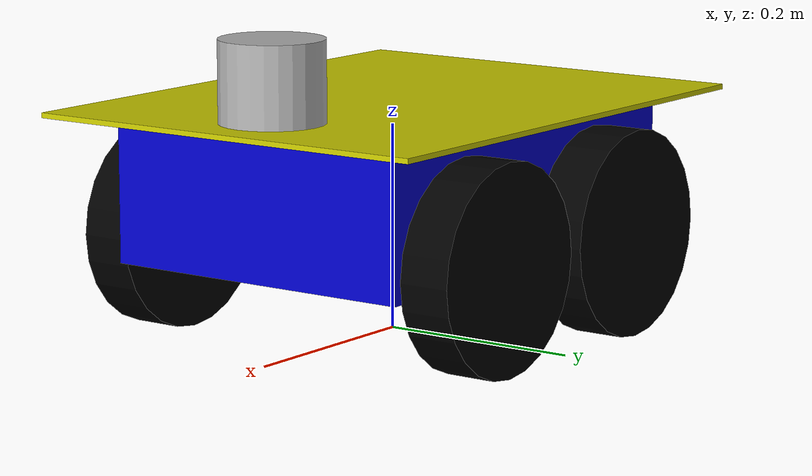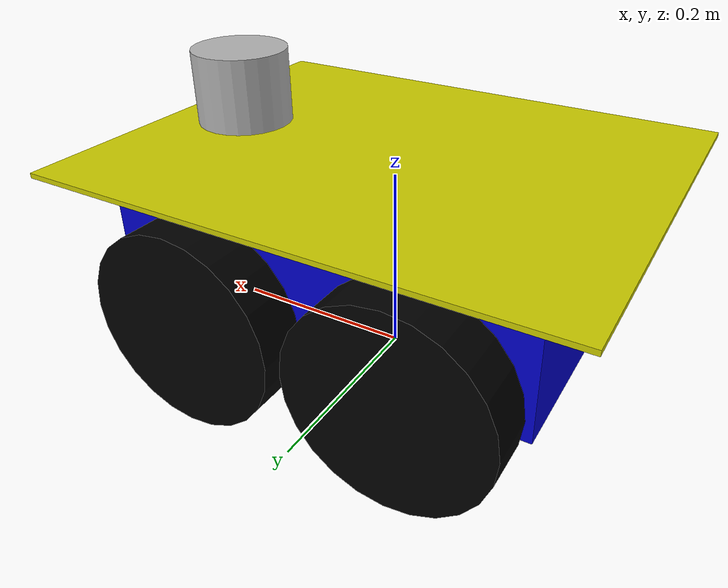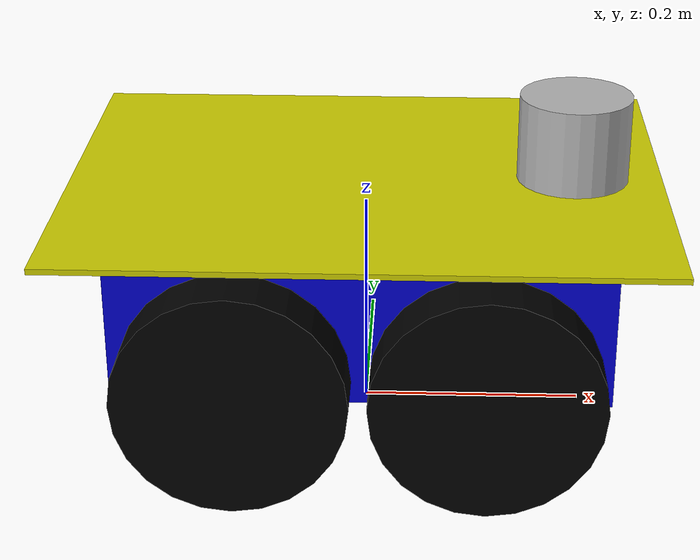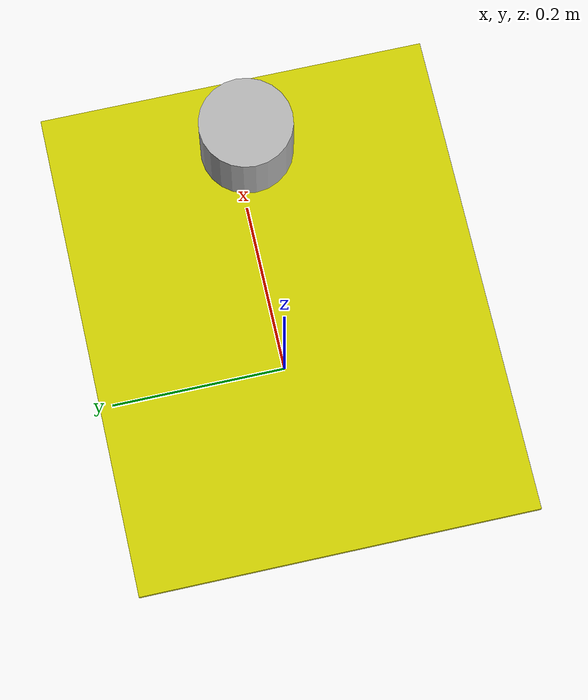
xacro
<?xml version="1.0"?>
<robot name="fourwheeler" xmlns:xacro="http://www.ros.org/wiki/xacro">

  <!-- Constants -->
  <xacro:property name="base_width" value="0.320"/> <!-- default: 0.320 -->
  <xacro:property name="base_length" value="0.430"/> <!-- default: 0.430 -->
  <xacro:property name="base_height" value="0.140"/> <!-- default: 0.140 -->
  <xacro:property name="wheel_width" value="0.05"/>
  <xacro:property name="wheel_radius" value="0.10"/>
  <!-- Distance between center of base and center of a wheel on base y axis -->
  <xacro:property name="wheel_offset_y" value="${base_width/2 + wheel_width/2}"/>

  <!-- Distance between center of base and center of a wheel on base x axis -->
  <xacro:property name="wheel_offset_x" value="${base_length/2 - 0.1075}"/>

  <xacro:property name="wheel_offset_z" value="-0.05"/> <!-- default: -0.05 -->
  <!-- end of constants -->

  <link name="base_footprint"/>

  <link name="base_link">
    <visual>
      <geometry>
        <box size="${base_length} ${base_width} ${base_height}"/>
      </geometry>
      <material name="blue">
        <color rgba="0 0 0.8 1"/>
      </material>
   </visual>
  </link>

  <joint name="base_to_base_footprint" type="fixed">
    <parent link="base_footprint"/>
    <child link="base_link"/>
    <origin xyz="0 0 ${-1*wheel_offset_z + wheel_radius}" rpy="0 0 0"/>
  </joint>

  <xacro:macro name="wheel" params="wheel_name reflect_y reflect_x">
    <link name="${wheel_name}">
      <visual>
        <geometry>
          <cylinder length="${wheel_width}" radius="${wheel_radius}"/>
        </geometry>
        <material name="black">
          <color rgba="0 0 0 1"/>
        </material>
      </visual>
    </link>

    <joint name="${wheel_name}_to_base" type="continuous">
      <parent link="base_link"/>
      <child link="${wheel_name}"/>
      <origin xyz="${wheel_offset_x * reflect_x} ${wheel_offset_y * reflect_y} ${wheel_offset_z}" rpy="1.57 0 0"/>
      <axis xyz="0 0 1"/>
    </joint>
  </xacro:macro>

  <xacro:wheel wheel_name="front_left_wheel" reflect_y="1" reflect_x="1"/>
  <xacro:wheel wheel_name="front_right_wheel" reflect_y="-1" reflect_x="1"/>
  <xacro:wheel wheel_name="rear_left_wheel" reflect_y="1" reflect_x="-1"/>
  <xacro:wheel wheel_name="rear_right_wheel" reflect_y="-1" reflect_x="-1"/>

  <link name="hood">
    <visual>
      <geometry>
        <box size="${base_length + 0.10} ${base_width + 0.10} 0.005"/>
      </geometry>
      <material name="yellow">
        <color rgba="0.8 0.8 0 1"/>
      </material>
    </visual>
  </link>

  <joint name="hood_to_base" type="fixed">
    <parent link="base_link"/>
    <child link="hood"/>
    <origin xyz="0 0 0.0725"/>
  </joint>

  <link name="lidar">
    <visual>
      <geometry>
        <cylinder length="0.08" radius="0.05"/>
      </geometry>
      <material name="Gray">
        <color rgba="0.7 0.7 0.7 1"/>
      </material>
    </visual>
  </link>

  <joint name="lidar_to_hood" type="continuous">
    <parent link="hood"/>
    <child link="lidar"/>
    <origin xyz="${(base_length + 0.10)/2 - 0.08} 0 0.04" rpy="0 0 0"/>
    <axis xyz="0 0 1"/>
  </joint>

</robot>
